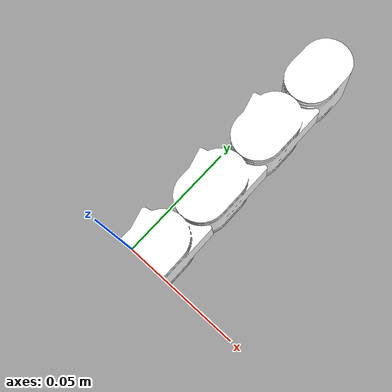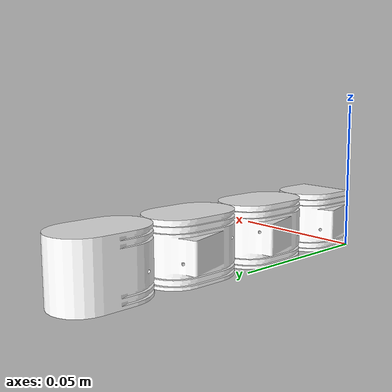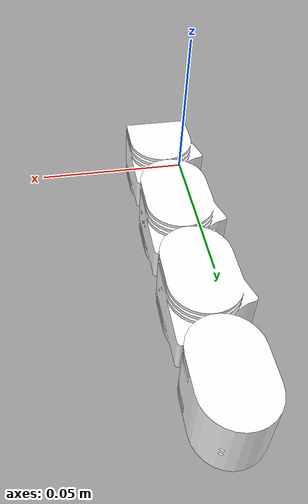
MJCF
<mujoco model="hand">

    <!--SETUP-->
    <compiler autolimits="true" angle="radian"/>
    <option collision="all"/>
    <default>
        <!-- use same geom params as the Shadow Hand model in IsaacGymEnv for now -->
        <geom rgba="1 1 1 1" type="mesh" density="662" friction="1 0.005 0.001" condim="3" margin="0.0005" contype="1" conaffinity="1"/>
        <!-- use same joint params as IsaacGymEnv for now -->
        <!-- TODO: joint damping and position control kp should eventually be set to sysID'ed values -->
        <joint type="hinge" limited="true" damping="0.05" armature="0.001" margin="0.01" frictionloss="0.001"/>
        <!-- actuator configuration -->
        <position ctrllimited="true" forcelimited="true" forcerange="-1 1" kp="2."/>
        <!-- the tendon which limits the two joints creating the rolling joint should be very limited in its length range -->
        <tendon limited="true" range="-0.001 0.001"/>
    </default>

    <!--ASSETS-->
    <asset>
        <mesh name="index_root" file="assets/Finger_base.stl" scale="0.001 0.001 0.001"/>
        <mesh name="index_pp" file="assets/Finger_proximal.STL" scale="0.001 0.001 0.001"/>
        <mesh name="index_mp" file="assets/Finger_middle.stl" scale="0.001 0.001 0.001"/>
        <mesh name="index_dp" file="assets/Finger_distal.STL" scale="0.001 0.001 0.001"/>
    </asset>

    <!--CONTACT-->
    <contact>
        <exclude body1="index_root" body2="index_pp"/>
        <exclude body1="index_pp" body2="index_mp"/>
        <exclude body1="index_mp" body2="index_dp"/>
    </contact>

    <!--SENSOR-->
    <sensor>
        <jointpos name="root2index_pp" joint="root2index_pp"/>
        <jointpos name="index_pp2mp" joint="index_pp2mp"/>
        <jointpos name="index_mp2dp" joint="index_mp2dp"/>
    </sensor>

    <!--ACTUATION-->
    <actuator>
        <position name="root2index_pp" joint="root2index_pp" ctrlrange="0 0.785"/>
        <position name="index_pp2mp" joint="index_pp2mp" ctrlrange="0 0.785" kp="4"/>
    </actuator>

    <!--TENDON CONSTRAIN-->
    <tendon>
        <fixed name="root2index_pp">
            <joint joint="root2index_pp_virt" coef="1"/>
            <joint joint="root2index_pp" coef="-1"/>
        </fixed>
        <fixed name="index_pp2mp">
            <joint joint="index_pp2mp_virt" coef="1"/>
            <joint joint="index_pp2mp" coef="-1"/>
        </fixed>
        <fixed name="index_jointlink">
            <joint joint="index_pp2mp" coef="1"/>
            <joint joint="index_mp2dp_virt" coef="-1"/>
        </fixed>
        <fixed name="index_mp2dp">
            <joint joint="index_mp2dp_virt" coef="1"/>
            <joint joint="index_mp2dp" coef="-1"/>
        </fixed>
    </tendon>

    <!--STRUCTURE-->
    <worldbody>

        <body name="index_root">
            <geom type="mesh" mesh="index_root"/>

            <body   name="root2index_pp_virt">
                <joint name="root2index_pp_virt" type="hinge" pos="0.01 0.01 0" axis="0 0 1" range="0 0.785"/>
                <inertial pos="0 0 0" mass="0.001" diaginertia="4E-10 4E-10 3E-10" />
                <body name="index_pp">
                    <joint name="root2index_pp" type="hinge" pos="0.01 0.03 0" axis="0 0 1" range="0 0.785"/>
                    <geom type="mesh" mesh="index_pp"/>

                    <body name="index_mp_virt">
                        <joint name="index_pp2mp_virt" type="hinge" pos="0.01 0.04 0" axis="0 0 1" range="0 0.785"/>
                        <inertial pos="0 0 0" mass="0.001" diaginertia="4E-10 4E-10 3E-10" />
                        <body name="index_mp">
                            <joint name="index_pp2mp" pos="0.01 0.06 0" axis="0 0 1" range="0 0.785"/>
                            <geom type="mesh" mesh="index_mp"/>

                            <body name="index_dp_virt">
                                <joint name="index_mp2dp_virt" pos="0.01 0.07 0" axis="0 0 1" range="0 0.785"/>
                                <inertial pos="0 0 0" mass="0.001" diaginertia="4E-10 4E-10 3E-10" />
                                <body name="index_dp">
                                    <joint name="index_mp2dp" pos="0.01 0.09 0" axis="0 0 1" range="0 0.785"/>
                                    <geom type="mesh" mesh="index_dp"/>
                                </body>
                            </body>
                        </body>
                    </body>
                </body>
            </body>
        </body>
    </worldbody>

</mujoco>
